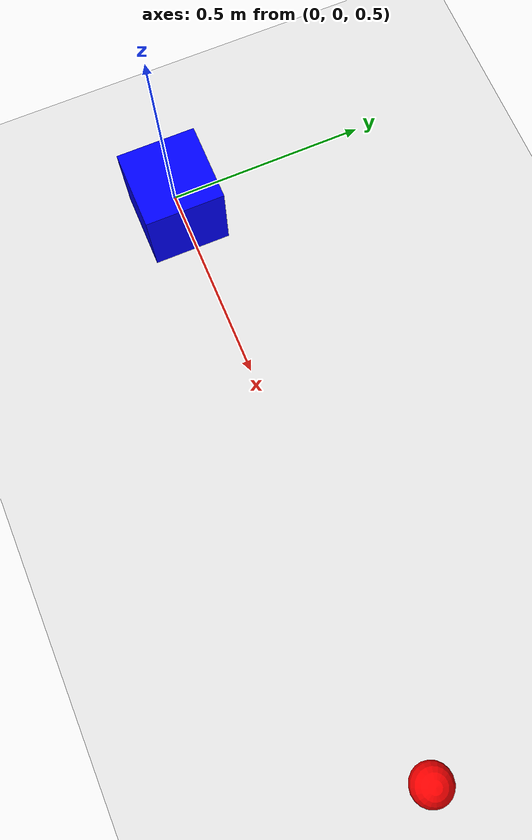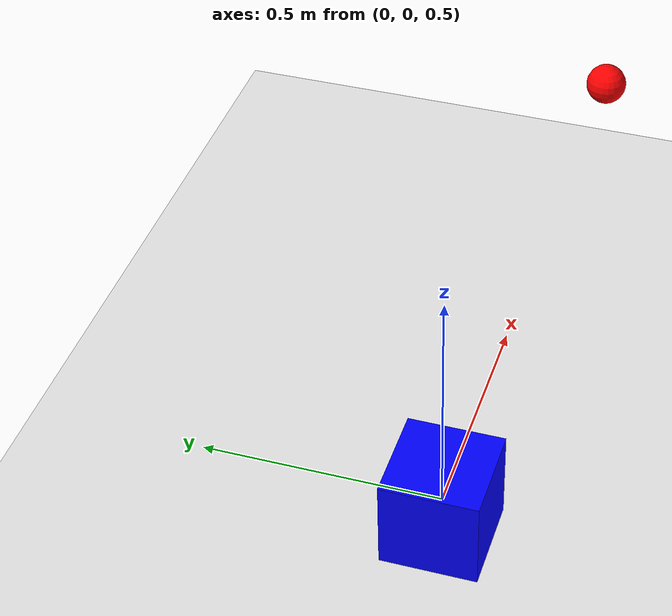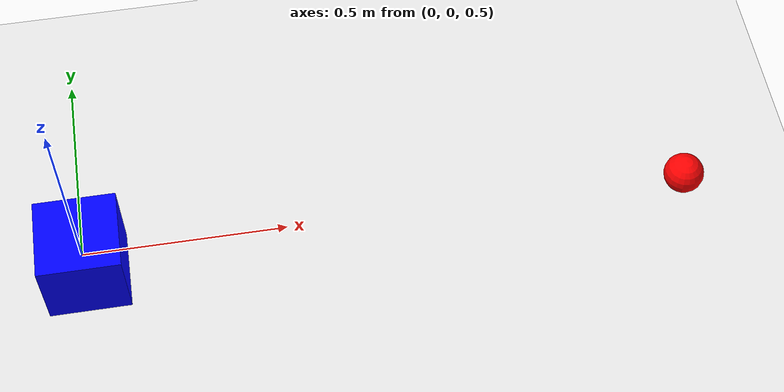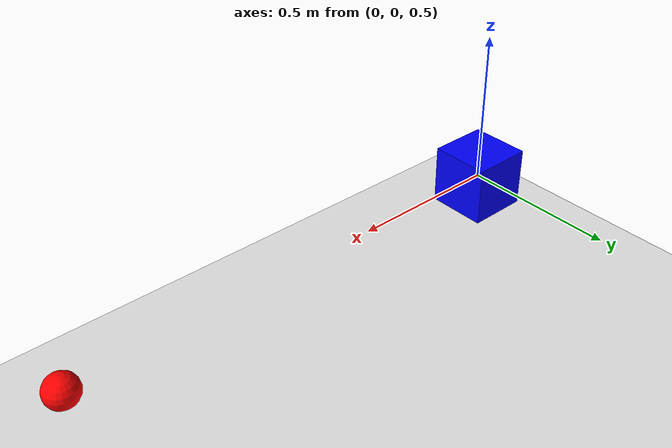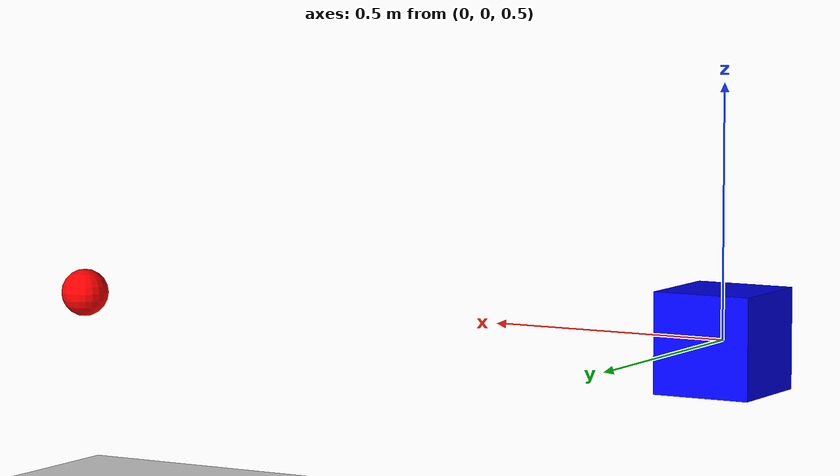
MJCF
<mujoco model="simple_slider">
    <compiler angle="radian"/>
    <option gravity="0 0 0" timestep="0.02"/>

    <worldbody>
        <light pos="0 0 3"/>
        <geom type="plane" size="2 2 0.1" rgba="0.9 0.9 0.9 1"/>

        <!-- Slider that can move left/right -->
        <body name="slider" pos="0 0 0.5">
            <joint name="slide" type="slide" axis="1 0 0" range="-2 2" damping="0.5"/>
            <geom type="box" size="0.1 0.1 0.1" rgba="0 0 1 1" mass="1"/>
        </body>

        <!-- Target position (visual only) -->
        <body name="target" pos="1.5 0 0.5">
            <geom type="sphere" size="0.05" rgba="1 0 0 1" contype="0" conaffinity="0"/>
        </body>
    </worldbody>

    <actuator>
        <motor joint="slide" gear="10" ctrllimited="true" ctrlrange="-1 1"/>
    </actuator>
</mujoco>
